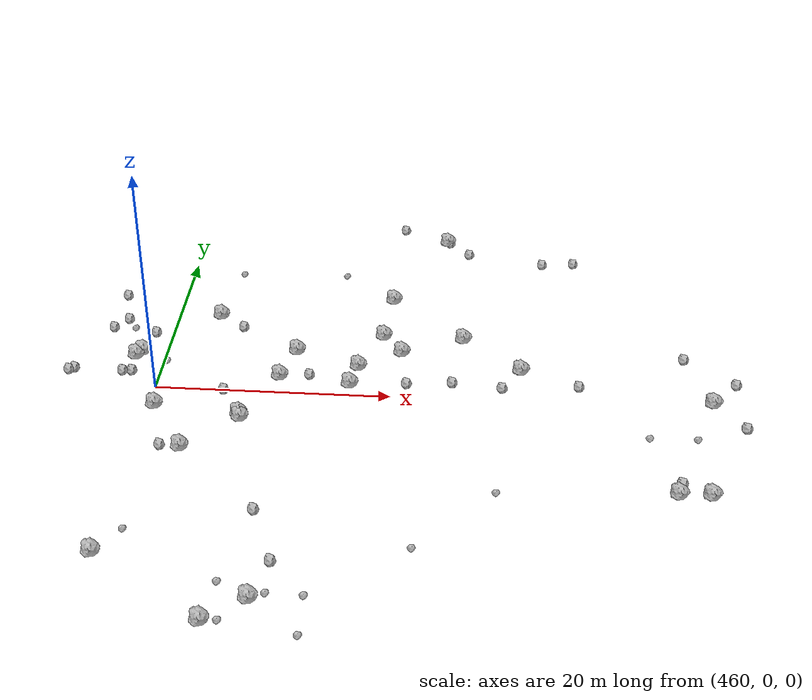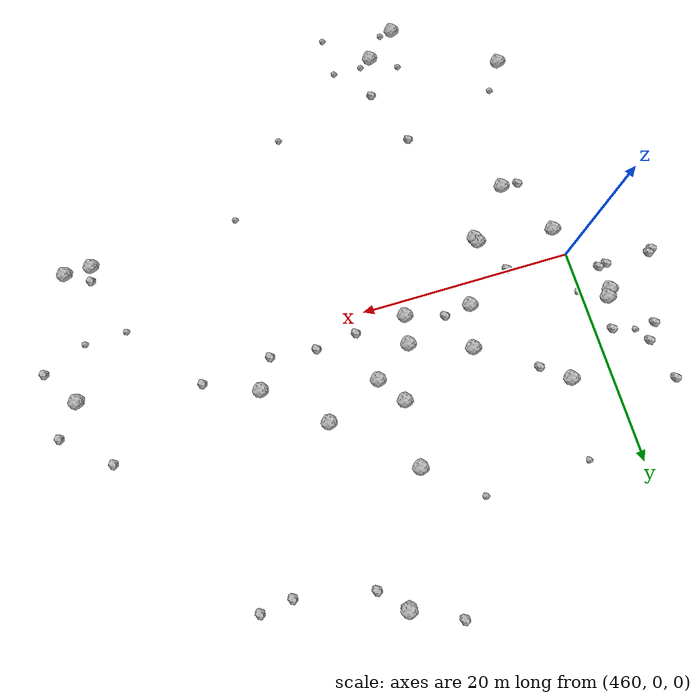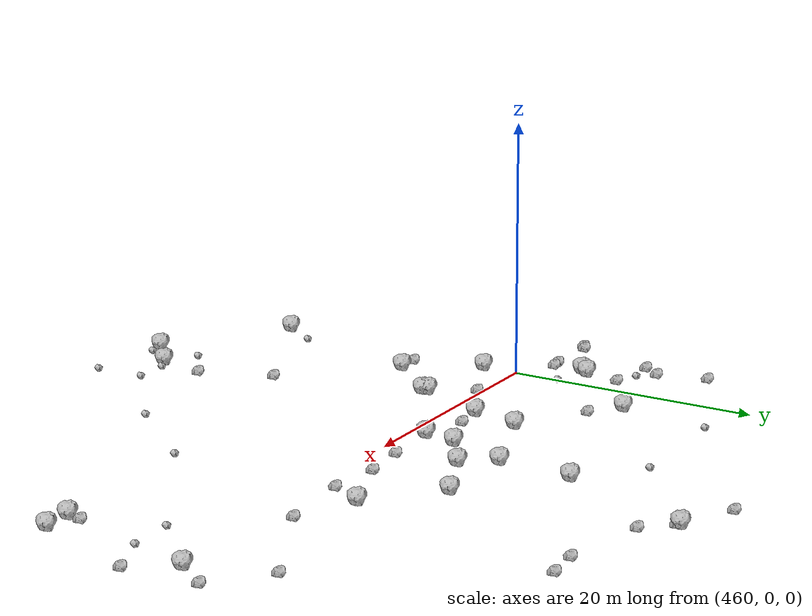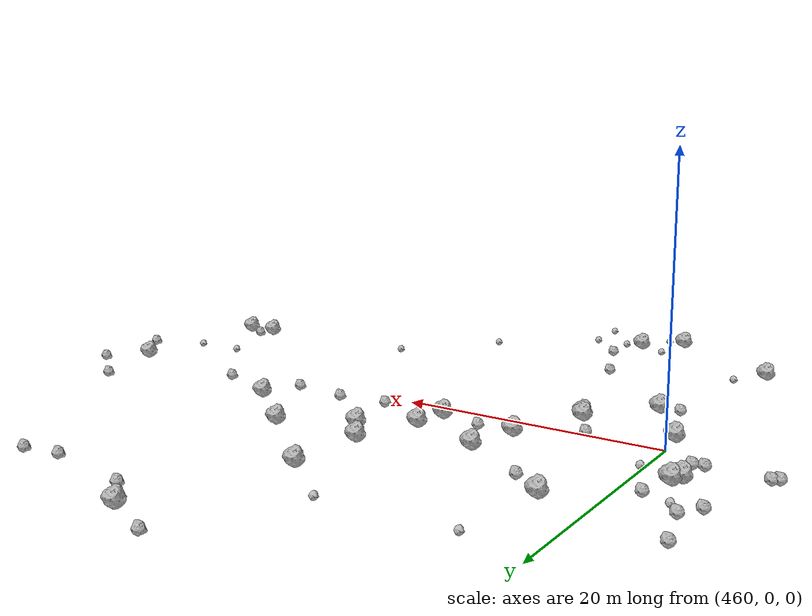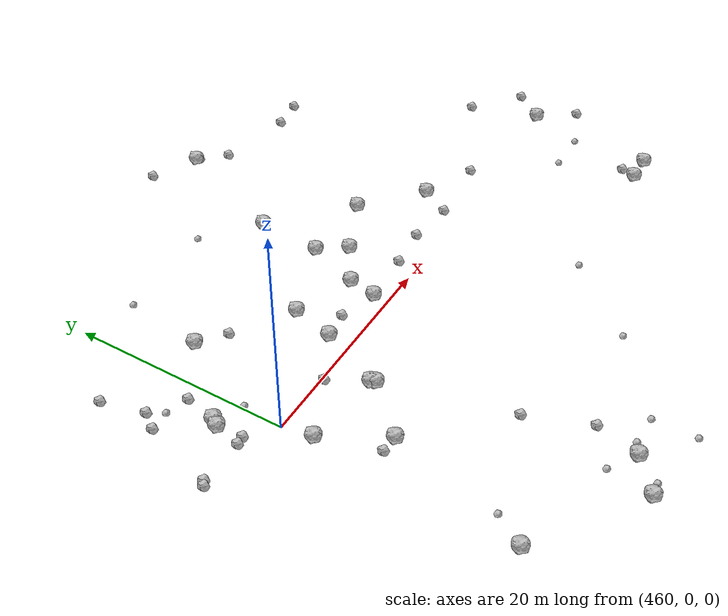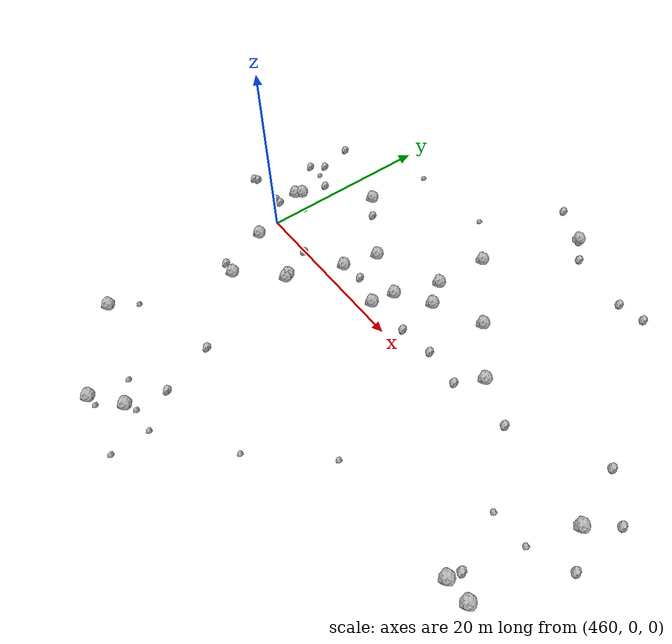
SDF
<sdf version="1.6">
 <world name="default">
  <include><uri>model://sun</uri></include>
  <model name="rock1_12_4">
   <include><uri>model://rock1</uri><pose>471.36104056907527 6.050210888982292 0.5 0 0 0</pose></include>
  </model>
  <model name="rock1_12_5">
   <include><uri>model://rock1</uri><pose>478.76868388906405 8.903853906503208 0.5 0 0 0</pose></include>
  </model>
  <model name="rock1_12_6">
   <include><uri>model://rock1</uri><pose>457.83878295264645 4.9948373600488765 0.5 0 0 0</pose></include>
  </model>
  <model name="rock1_12_7">
   <include><uri>model://rock1</uri><pose>460.46586613701265 -2.742641388975155 0.5 0 0 0</pose></include>
  </model>
  <model name="rock1_12_8">
   <include><uri>model://rock1</uri><pose>470.351278402274 2.1186349019745094 0.5 0 0 0</pose></include>
  </model>
  <model name="rock1_12_9">
   <include><uri>model://rock1</uri><pose>507.0753366408726 0.7231620644472763 0.5 0 0 0</pose></include>
  </model>
  <model name="rock1_12_10">
   <include><uri>model://rock1</uri><pose>480.53572404445316 6.43052323183602 0.5 0 0 0</pose></include>
  </model>
  <model name="rock1_12_11">
   <include><uri>model://rock1</uri><pose>467.8716765319678 -3.972153425664935 0.5 0 0 0</pose></include>
  </model>
  <model name="rock1_12_12">
   <include><uri>model://rock1</uri><pose>457.3965826949176 4.32541002630159 0.5 0 0 0</pose></include>
  </model>
  <model name="rock1_12_13">
   <include><uri>model://rock1</uri><pose>471.9230799213407 -25.161354905077538 0.5 0 0 0</pose></include>
  </model>
  <model name="rock1_12_14">
   <include><uri>model://rock1</uri><pose>467.70711286674066 -3.5597149841650157 0.5 0 0 0</pose></include>
  </model>
  <model name="rock1_12_15">
   <include><uri>model://rock1</uri><pose>483.6634454758435 25.825370726982186 0.5 0 0 0</pose></include>
  </model>
  <model name="rock1_12_16">
   <include><uri>model://rock1</uri><pose>476.93783422157725 4.044356399383126 0.5 0 0 0</pose></include>
  </model>
  <model name="rock1_12_17">
   <include><uri>model://rock1</uri><pose>485.83623242918026 8.861280731764921 0.5 0 0 0</pose></include>
  </model>
  <model name="rock1_12_18">
   <include><uri>model://rock1</uri><pose>468.8936200609207 -27.61095923810352 0.5 0 0 0</pose></include>
  </model>
  <model name="rock1_12_19">
   <include><uri>model://rock1</uri><pose>503.30509382106027 -11.418678980211503 0.5 0 0 0</pose></include>
  </model>
  <model name="rock1_12_20">
   <include><uri>model://rock1</uri><pose>459.62605527403 -21.170173810294656 0.5 0 0 0</pose></include>
  </model>
  <model name="rock1_12_21">
   <include><uri>model://rock1</uri><pose>505.83951447488585 -11.348501610359033 0.5 0 0 0</pose></include>
  </model>
  <model name="rock1_12_22">
   <include><uri>model://rock1</uri><pose>479.21406090691954 14.915938360250685 0.5 0 0 0</pose></include>
  </model>
  <model name="rock1_12_23">
   <include><uri>model://rock1</uri><pose>463.68976310308847 -8.254880812382336 0.5 0 0 0</pose></include>
  </model>
  <model name="rock1_12_24">
   <include><uri>model://rock1</uri><pose>463.7643658399691 11.21751685782521 0.5 0 0 0</pose></include>
  </model>
  <model name="rock1_12_25">
   <include><uri>model://rock1</uri><pose>476.4420566014053 1.4045820426635451 0.5 0 0 0</pose></include>
  </model>
  <model name="rock1_12_26">
   <include><uri>model://rock1</uri><pose>490.97230682055886 4.365982718158378 0.5 0 0 0</pose></include>
  </model>
  <model name="rock2_12_0">
   <include><uri>model://rock2</uri><pose>458.44778986991975 7.981524854761837 0.3 0 0 0</pose></include>
  </model>
  <model name="rock2_12_1">
   <include><uri>model://rock2</uri><pose>483.87840286030644 25.691613514750586 0.3 0 0 0</pose></include>
  </model>
  <model name="rock2_12_2">
   <include><uri>model://rock2</uri><pose>454.57610614464784 13.877512864296605 0.3 0 0 0</pose></include>
  </model>
  <model name="rock2_12_3">
   <include><uri>model://rock2</uri><pose>454.5011756201307 8.519750213125299 0.3 0 0 0</pose></include>
  </model>
  <model name="rock2_12_4">
   <include><uri>model://rock2</uri><pose>481.25148882067396 1.748116437044068 0.3 0 0 0</pose></include>
  </model>
  <model name="rock2_12_5">
   <include><uri>model://rock2</uri><pose>509.44968086201055 -2.544757934324174 0.3 0 0 0</pose></include>
  </model>
  <model name="rock2_12_6">
   <include><uri>model://rock2</uri><pose>465.8816618208147 -0.20004062366965414 0.3 0 0 0</pose></include>
  </model>
  <model name="rock2_12_7">
   <include><uri>model://rock2</uri><pose>470.80751870103506 -15.558193084105636 0.3 0 0 0</pose></include>
  </model>
  <model name="rock2_12_8">
   <include><uri>model://rock2</uri><pose>455.55044017416236 9.969320385016402 0.3 0 0 0</pose></include>
  </model>
  <model name="rock2_12_9">
   <include><uri>model://rock2</uri><pose>452.06970242195564 1.7438709498887377 0.3 0 0 0</pose></include>
  </model>
  <model name="rock2_12_10">
   <include><uri>model://rock2</uri><pose>485.7981851492084 23.631603740027302 0.3 0 0 0</pose></include>
  </model>
  <model name="rock2_12_11">
   <include><uri>model://rock2</uri><pose>509.2148221593548 3.554522785819458 0.3 0 0 0</pose></include>
  </model>
  <model name="rock2_12_12">
   <include><uri>model://rock2</uri><pose>495.8784403442657 2.3324235838118668 0.3 0 0 0</pose></include>
  </model>
  <model name="rock2_12_13">
   <include><uri>model://rock2</uri><pose>462.02062076825285 -8.13283718444901 0.3 0 0 0</pose></include>
  </model>
  <model name="rock2_12_14">
   <include><uri>model://rock2</uri><pose>452.49944588861564 2.0413325709898515 0.3 0 0 0</pose></include>
  </model>
  <model name="rock2_12_15">
   <include><uri>model://rock2</uri><pose>492.8017580264762 22.2343790959479 0.3 0 0 0</pose></include>
  </model>
  <model name="rock2_12_16">
   <include><uri>model://rock2</uri><pose>456.72708722553807 1.9176081660125242 0.3 0 0 0</pose></include>
  </model>
  <model name="rock2_12_17">
   <include><uri>model://rock2</uri><pose>472.9256884488113 -21.18891608221432 0.3 0 0 0</pose></include>
  </model>
  <model name="rock2_12_18">
   <include><uri>model://rock2</uri><pose>466.0970682658183 9.450528162836449 0.3 0 0 0</pose></include>
  </model>
  <model name="rock2_12_19">
   <include><uri>model://rock2</uri><pose>503.6265912322074 -10.05272526123628 0.3 0 0 0</pose></include>
  </model>
  <model name="rock2_12_20">
   <include><uri>model://rock2</uri><pose>495.74132538859186 22.609702223022346 0.3 0 0 0</pose></include>
  </model>
  <model name="rock2_12_21">
   <include><uri>model://rock2</uri><pose>457.52056472392866 2.0070081187566444 0.3 0 0 0</pose></include>
  </model>
  <model name="rock2_12_22">
   <include><uri>model://rock2</uri><pose>489.3800799694777 1.6729181947796903 0.3 0 0 0</pose></include>
  </model>
  <model name="rock2_12_23">
   <include><uri>model://rock2</uri><pose>485.12428172289447 2.1578826591746463 0.3 0 0 0</pose></include>
  </model>
  <model name="rock2_12_24">
   <include><uri>model://rock2</uri><pose>505.03790664288186 7.064168834815753 0.3 0 0 0</pose></include>
  </model>
  <model name="rock2_12_25">
   <include><uri>model://rock2</uri><pose>472.86953240488344 2.4794074104833967 0.3 0 0 0</pose></include>
  </model>
  <model name="rock2_12_26">
   <include><uri>model://rock2</uri><pose>479.3876205114004 27.901007305385384 0.3 0 0 0</pose></include>
  </model>
  <model name="rock3_12_0">
   <include><uri>model://rock3</uri><pose>475.79721611668947 -24.629404058378302 0.2 0 0 0</pose></include>
  </model>
  <model name="rock3_12_1">
   <include><uri>model://rock3</uri><pose>501.44090054335015 -4.406661315198875 0.2 0 0 0</pose></include>
  </model>
  <model name="rock3_12_2">
   <include><uri>model://rock3</uri><pose>483.08709314312136 -19.061487705101484 0.2 0 0 0</pose></include>
  </model>
  <model name="rock3_12_3">
   <include><uri>model://rock3</uri><pose>505.3307354518541 -4.30537915503708 0.2 0 0 0</pose></include>
  </model>
  <model name="rock3_12_4">
   <include><uri>model://rock3</uri><pose>461.33660135723335 -18.454478112320615 0.2 0 0 0</pose></include>
  </model>
  <model name="rock3_12_5">
   <include><uri>model://rock3</uri><pose>464.66976059798895 18.497093369104753 0.2 0 0 0</pose></include>
  </model>
  <model name="rock3_12_6">
   <include><uri>model://rock3</uri><pose>469.39283954255757 -23.625505099970738 0.2 0 0 0</pose></include>
  </model>
  <model name="rock3_12_7">
   <include><uri>model://rock3</uri><pose>475.89675827839847 -28.57239413199408 0.2 0 0 0</pose></include>
  </model>
  <model name="rock3_12_8">
   <include><uri>model://rock3</uri><pose>460.2229272296626 3.727530180406042 0.2 0 0 0</pose></include>
  </model>
  <model name="rock3_12_9">
   <include><uri>model://rock3</uri><pose>474.4250860231111 18.859999158004086 0.2 0 0 0</pose></include>
  </model>
  <model name="rock3_12_10">
   <include><uri>model://rock3</uri><pose>473.02189852669164 -24.575920088739082 0.2 0 0 0</pose></include>
  </model>
  <model name="rock3_12_11">
   <include><uri>model://rock3</uri><pose>456.39616566804847 8.596564638637155 0.2 0 0 0</pose></include>
  </model>
  <model name="rock3_12_12">
   <include><uri>model://rock3</uri><pose>470.0901585826922 -27.498546557630675 0.2 0 0 0</pose></include>
  </model>
  <model name="rock3_12_13">
   <include><uri>model://rock3</uri><pose>489.1700408350996 -12.217643395863579 0.2 0 0 0</pose></include>
  </model>
 </world>
</sdf>
